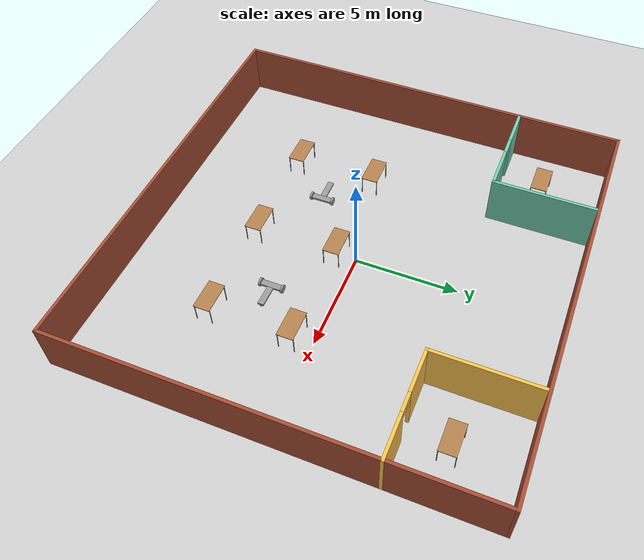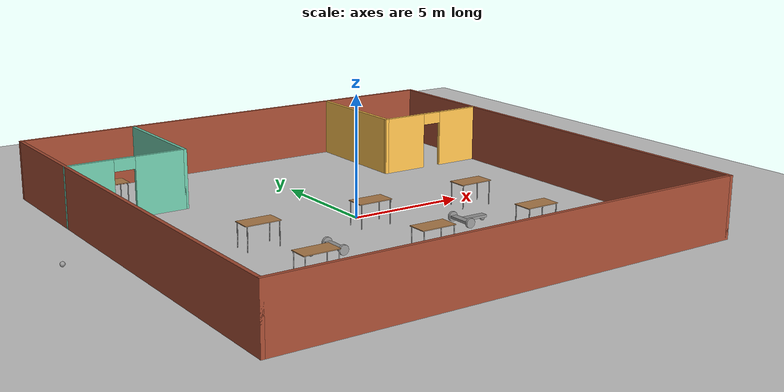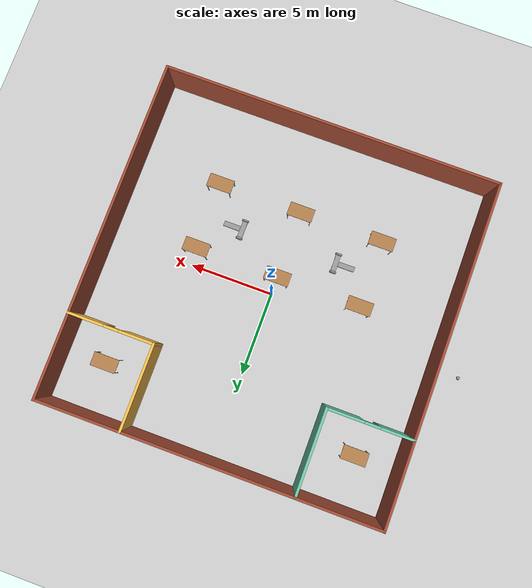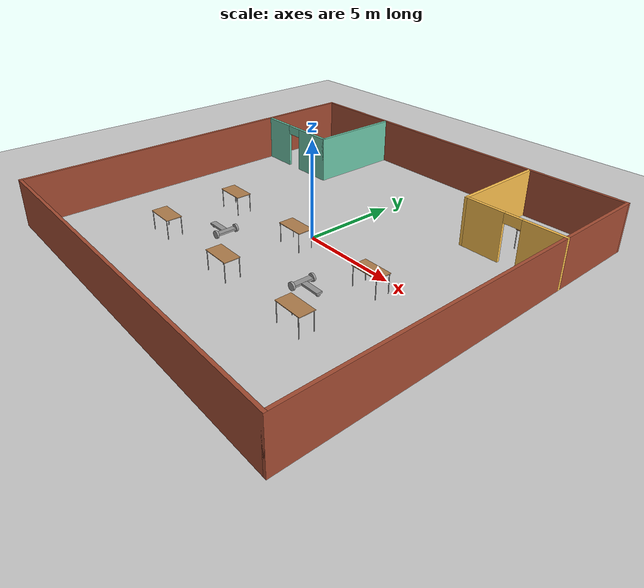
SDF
<sdf version="1.6">
 <world name="default">
  <light name="sun" type="directional">
   <pose>0 0 10 0 -0 0</pose>
   <diffuse>0.8 0.8 0.8 1</diffuse>
   <specular>0.2 0.2 0.2 1</specular>
   <attenuation>
    <range>1000</range>
    <constant>0.9</constant>
    <linear>0.01</linear>
    <quadratic>0.001</quadratic>
   </attenuation>
   <direction>-0.5 0.1 -0.9</direction>
  </light>
  <model name="ground_plane">
   <static>1</static>
   <link name="link">
    <collision name="collision">
     <geometry><plane><normal>0 0 1</normal><size>100 100</size></plane></geometry>
     <surface><friction><ode><mu>100</mu><mu2>50</mu2></ode></friction></surface>
    </collision>
    <visual name="visual">
     <cast_shadows>0</cast_shadows>
     <geometry><plane><normal>0 0 1</normal><size>100 100</size></plane></geometry>
     <material>
      <script><uri>file://media/materials/scripts/gazebo.material</uri><name>Gazebo/Grey</name></script>
     </material>
    </visual>
   </link>
  </model>
  <gravity>0 0 -9.8</gravity>
  <magnetic_field>6e-06 2.3e-05 -4.2e-05</magnetic_field>
  <atmosphere type="adiabatic"/>
  <physics name="default_physics" default="0" type="ode">
   <max_step_size>0.001</max_step_size>
   <real_time_factor>1</real_time_factor>
   <real_time_update_rate>1000</real_time_update_rate>
  </physics>
  <scene><ambient>0.4 0.4 0.4 1</ambient><background>0.7 0.7 0.7 1</background><shadows>1</shadows></scene>
  <spherical_coordinates>
   <surface_model>EARTH_WGS84</surface_model>
   <latitude_deg>0</latitude_deg>
   <longitude_deg>0</longitude_deg>
   <elevation>0</elevation>
   <heading_deg>0</heading_deg>
  </spherical_coordinates>
  <model name="Building">
   <link name="Wall_10">
    <collision name="Wall_10_Collision">
     <geometry><box><size>20.15 0.15 2.5</size></box></geometry>
     <pose>0 0 1.25 0 -0 0</pose>
    </collision>
    <visual name="Wall_10_Visual">
     <pose>0 0 1.25 0 -0 0</pose>
     <geometry><box><size>20.15 0.15 2.5</size></box></geometry>
     <material>
      <script><uri>file://media/materials/scripts/gazebo.material</uri><name>Gazebo/Bricks</name></script>
      <ambient>1 1 1 1</ambient>
     </material>
     <meta><layer>0</layer></meta>
    </visual>
    <pose>0 -10 0 0 -0 0</pose>
   </link>
   <link name="Wall_11">
    <collision name="Wall_11_Collision">
     <geometry><box><size>20.15 0.15 2.5</size></box></geometry>
     <pose>0 0 1.25 0 -0 0</pose>
    </collision>
    <visual name="Wall_11_Visual">
     <pose>0 0 1.25 0 -0 0</pose>
     <geometry><box><size>20.15 0.15 2.5</size></box></geometry>
     <material>
      <script><uri>file://media/materials/scripts/gazebo.material</uri><name>Gazebo/Bricks</name></script>
      <ambient>1 1 1 1</ambient>
     </material>
     <meta><layer>0</layer></meta>
    </visual>
    <pose>10 0 0 0 -0 1.5708</pose>
   </link>
   <link name="Wall_12">
    <collision name="Wall_12_Collision">
     <geometry><box><size>20.15 0.15 2.5</size></box></geometry>
     <pose>0 0 1.25 0 -0 0</pose>
    </collision>
    <visual name="Wall_12_Visual">
     <pose>0 0 1.25 0 -0 0</pose>
     <geometry><box><size>20.15 0.15 2.5</size></box></geometry>
     <material>
      <script><uri>file://media/materials/scripts/gazebo.material</uri><name>Gazebo/Bricks</name></script>
      <ambient>1 1 1 1</ambient>
     </material>
     <meta><layer>0</layer></meta>
    </visual>
    <pose>0 10 0 0 -0 3.14159</pose>
   </link>
   <link name="Wall_13">
    <collision name="Wall_13_Collision">
     <geometry><box><size>20.15 0.15 2.5</size></box></geometry>
     <pose>0 0 1.25 0 -0 0</pose>
    </collision>
    <visual name="Wall_13_Visual">
     <pose>0 0 1.25 0 -0 0</pose>
     <geometry><box><size>20.15 0.15 2.5</size></box></geometry>
     <material>
      <script><uri>file://media/materials/scripts/gazebo.material</uri><name>Gazebo/Bricks</name></script>
      <ambient>1 1 1 1</ambient>
     </material>
     <meta><layer>0</layer></meta>
    </visual>
    <pose>-10 0 0 0 -0 -1.5708</pose>
   </link>
   <link name="Wall_2">
    <pose>7.5 5 0 0 -0 3.14159</pose>
    <visual name="Wall_2_Visual_0">
     <pose>-1.5125 0 1.25 0 -0 0</pose>
     <geometry><box><size>2.125 0.15 2.5</size></box></geometry>
     <material>
      <script><uri>file://media/materials/scripts/gazebo.material</uri><name>Gazebo/Grey</name></script>
      <ambient>1 0.764706 0.305882 1</ambient>
     </material>
     <meta><layer>0</layer></meta>
    </visual>
    <collision name="Wall_2_Collision_0">
     <geometry><box><size>2.125 0.15 2.5</size></box></geometry>
     <pose>-1.5125 0 1.25 0 -0 0</pose>
    </collision>
    <visual name="Wall_2_Visual_1">
     <pose>1.5125 0 1.25 0 -0 0</pose>
     <geometry><box><size>2.125 0.15 2.5</size></box></geometry>
     <material>
      <script><uri>file://media/materials/scripts/gazebo.material</uri><name>Gazebo/Grey</name></script>
      <ambient>1 0.764706 0.305882 1</ambient>
     </material>
     <meta><layer>0</layer></meta>
    </visual>
    <collision name="Wall_2_Collision_1">
     <geometry><box><size>2.125 0.15 2.5</size></box></geometry>
     <pose>1.5125 0 1.25 0 -0 0</pose>
    </collision>
    <visual name="Wall_2_Visual_2">
     <pose>-0 0 2.25 0 -0 0</pose>
     <geometry><box><size>0.9 0.15 0.5</size></box></geometry>
     <material>
      <script><uri>file://media/materials/scripts/gazebo.material</uri><name>Gazebo/Grey</name></script>
      <ambient>1 0.764706 0.305882 1</ambient>
     </material>
     <meta><layer>0</layer></meta>
    </visual>
    <collision name="Wall_2_Collision_2">
     <geometry><box><size>0.9 0.15 0.5</size></box></geometry>
     <pose>-0 0 2.25 0 -0 0</pose>
    </collision>
   </link>
   <link name="Wall_3">
    <collision name="Wall_3_Collision">
     <geometry><box><size>5.15 0.15 2.5</size></box></geometry>
     <pose>0 0 1.25 0 -0 0</pose>
    </collision>
    <visual name="Wall_3_Visual">
     <pose>0 0 1.25 0 -0 0</pose>
     <geometry><box><size>5.15 0.15 2.5</size></box></geometry>
     <material>
      <script><uri>file://media/materials/scripts/gazebo.material</uri><name>Gazebo/Grey</name></script>
      <ambient>1 0.764706 0.305882 1</ambient>
     </material>
     <meta><layer>0</layer></meta>
    </visual>
    <pose>5 7.5 0 0 -0 1.5708</pose>
   </link>
   <link name="Wall_6">
    <pose>-7.5 5 0 0 -0 0</pose>
    <visual name="Wall_6_Visual_0">
     <pose>-1.57098 0 1.25 0 -0 0</pose>
     <geometry><box><size>2.00805 0.15 2.5</size></box></geometry>
     <material>
      <script><uri>file://media/materials/scripts/gazebo.material</uri><name>Gazebo/Grey</name></script>
      <ambient>0.435294 0.796078 0.67451 1</ambient>
     </material>
     <meta><layer>0</layer></meta>
    </visual>
    <collision name="Wall_6_Collision_0">
     <geometry><box><size>2.00805 0.15 2.5</size></box></geometry>
     <pose>-1.57098 0 1.25 0 -0 0</pose>
    </collision>
    <visual name="Wall_6_Visual_1">
     <pose>1.45402 0 1.25 0 -0 0</pose>
     <geometry><box><size>2.24195 0.15 2.5</size></box></geometry>
     <material>
      <script><uri>file://media/materials/scripts/gazebo.material</uri><name>Gazebo/Grey</name></script>
      <ambient>0.435294 0.796078 0.67451 1</ambient>
     </material>
     <meta><layer>0</layer></meta>
    </visual>
    <collision name="Wall_6_Collision_1">
     <geometry><box><size>2.24195 0.15 2.5</size></box></geometry>
     <pose>1.45402 0 1.25 0 -0 0</pose>
    </collision>
    <visual name="Wall_6_Visual_2">
     <pose>-0.116954 0 2.25 0 -0 0</pose>
     <geometry><box><size>0.9 0.15 0.5</size></box></geometry>
     <material>
      <script><uri>file://media/materials/scripts/gazebo.material</uri><name>Gazebo/Grey</name></script>
      <ambient>0.435294 0.796078 0.67451 1</ambient>
     </material>
     <meta><layer>0</layer></meta>
    </visual>
    <collision name="Wall_6_Collision_2">
     <geometry><box><size>0.9 0.15 0.5</size></box></geometry>
     <pose>-0.116954 0 2.25 0 -0 0</pose>
    </collision>
   </link>
   <link name="Wall_7">
    <collision name="Wall_7_Collision">
     <geometry><box><size>5.15 0.15 2.5</size></box></geometry>
     <pose>0 0 1.25 0 -0 0</pose>
    </collision>
    <visual name="Wall_7_Visual">
     <pose>0 0 1.25 0 -0 0</pose>
     <geometry><box><size>5.15 0.15 2.5</size></box></geometry>
     <material>
      <script><uri>file://media/materials/scripts/gazebo.material</uri><name>Gazebo/Grey</name></script>
      <ambient>0.435294 0.796078 0.67451 1</ambient>
     </material>
     <meta><layer>0</layer></meta>
    </visual>
    <pose>-5 7.5 0 0 -0 1.5708</pose>
   </link>
   <static>1</static>
  </model>
  <model name="table">
   <static>1</static>
   <link name="link">
    <collision name="surface">
     <pose>0 0 1 0 -0 0</pose>
     <geometry><box><size>1.5 0.8 0.03</size></box></geometry>
     <surface><friction><ode><mu>0.6</mu><mu2>0.6</mu2></ode></friction></surface>
    </collision>
    <visual name="visual1">
     <pose>0 0 1 0 -0 0</pose>
     <geometry><box><size>1.5 0.8 0.03</size></box></geometry>
     <material>
      <script><uri>file://media/materials/scripts/gazebo.material</uri><name>Gazebo/Wood</name></script>
     </material>
    </visual>
    <collision name="front_left_leg">
     <pose>0.68 0.38 0.5 0 -0 0</pose>
     <geometry><cylinder><radius>0.02</radius><length>1</length></cylinder></geometry>
    </collision>
    <visual name="front_left_leg">
     <pose>0.68 0.38 0.5 0 -0 0</pose>
     <geometry><cylinder><radius>0.02</radius><length>1</length></cylinder></geometry>
     <material>
      <script><uri>file://media/materials/scripts/gazebo.material</uri><name>Gazebo/Grey</name></script>
     </material>
    </visual>
    <collision name="front_right_leg">
     <pose>0.68 -0.38 0.5 0 -0 0</pose>
     <geometry><cylinder><radius>0.02</radius><length>1</length></cylinder></geometry>
    </collision>
    <visual name="front_right_leg">
     <pose>0.68 -0.38 0.5 0 -0 0</pose>
     <geometry><cylinder><radius>0.02</radius><length>1</length></cylinder></geometry>
     <material>
      <script><uri>file://media/materials/scripts/gazebo.material</uri><name>Gazebo/Grey</name></script>
     </material>
    </visual>
    <collision name="back_right_leg">
     <pose>-0.68 -0.38 0.5 0 -0 0</pose>
     <geometry><cylinder><radius>0.02</radius><length>1</length></cylinder></geometry>
    </collision>
    <visual name="back_right_leg">
     <pose>-0.68 -0.38 0.5 0 -0 0</pose>
     <geometry><cylinder><radius>0.02</radius><length>1</length></cylinder></geometry>
     <material>
      <script><uri>file://media/materials/scripts/gazebo.material</uri><name>Gazebo/Grey</name></script>
     </material>
    </visual>
    <collision name="back_left_leg">
     <pose>-0.68 0.38 0.5 0 -0 0</pose>
     <geometry><cylinder><radius>0.02</radius><length>1</length></cylinder></geometry>
    </collision>
    <visual name="back_left_leg">
     <pose>-0.68 0.38 0.5 0 -0 0</pose>
     <geometry><cylinder><radius>0.02</radius><length>1</length></cylinder></geometry>
     <material>
      <script><uri>file://media/materials/scripts/gazebo.material</uri><name>Gazebo/Grey</name></script>
     </material>
    </visual>
   </link>
   <pose>7.5 7 0 0 -0 0</pose>
  </model>
  <model name="table_0">
   <static>1</static>
   <link name="link">
    <collision name="surface">
     <pose>0 0 1 0 -0 0</pose>
     <geometry><box><size>1.5 0.8 0.03</size></box></geometry>
     <surface><friction><ode><mu>0.6</mu><mu2>0.6</mu2></ode></friction></surface>
    </collision>
    <visual name="visual1">
     <pose>0 0 1 0 -0 0</pose>
     <geometry><box><size>1.5 0.8 0.03</size></box></geometry>
     <material>
      <script><uri>file://media/materials/scripts/gazebo.material</uri><name>Gazebo/Wood</name></script>
     </material>
    </visual>
    <collision name="front_left_leg">
     <pose>0.68 0.38 0.5 0 -0 0</pose>
     <geometry><cylinder><radius>0.02</radius><length>1</length></cylinder></geometry>
    </collision>
    <visual name="front_left_leg">
     <pose>0.68 0.38 0.5 0 -0 0</pose>
     <geometry><cylinder><radius>0.02</radius><length>1</length></cylinder></geometry>
     <material>
      <script><uri>file://media/materials/scripts/gazebo.material</uri><name>Gazebo/Grey</name></script>
     </material>
    </visual>
    <collision name="front_right_leg">
     <pose>0.68 -0.38 0.5 0 -0 0</pose>
     <geometry><cylinder><radius>0.02</radius><length>1</length></cylinder></geometry>
    </collision>
    <visual name="front_right_leg">
     <pose>0.68 -0.38 0.5 0 -0 0</pose>
     <geometry><cylinder><radius>0.02</radius><length>1</length></cylinder></geometry>
     <material>
      <script><uri>file://media/materials/scripts/gazebo.material</uri><name>Gazebo/Grey</name></script>
     </material>
    </visual>
    <collision name="back_right_leg">
     <pose>-0.68 -0.38 0.5 0 -0 0</pose>
     <geometry><cylinder><radius>0.02</radius><length>1</length></cylinder></geometry>
    </collision>
    <visual name="back_right_leg">
     <pose>-0.68 -0.38 0.5 0 -0 0</pose>
     <geometry><cylinder><radius>0.02</radius><length>1</length></cylinder></geometry>
     <material>
      <script><uri>file://media/materials/scripts/gazebo.material</uri><name>Gazebo/Grey</name></script>
     </material>
    </visual>
    <collision name="back_left_leg">
     <pose>-0.68 0.38 0.5 0 -0 0</pose>
     <geometry><cylinder><radius>0.02</radius><length>1</length></cylinder></geometry>
    </collision>
    <visual name="back_left_leg">
     <pose>-0.68 0.38 0.5 0 -0 0</pose>
     <geometry><cylinder><radius>0.02</radius><length>1</length></cylinder></geometry>
     <material>
      <script><uri>file://media/materials/scripts/gazebo.material</uri><name>Gazebo/Grey</name></script>
     </material>
    </visual>
   </link>
   <pose>-7.5 7 0 0 -0 0</pose>
  </model>
  <model name="table_clone">
   <static>1</static>
   <link name="link">
    <collision name="surface">
     <pose>0 0 1 0 -0 0</pose>
     <geometry><box><size>1.5 0.8 0.03</size></box></geometry>
     <surface><friction><ode><mu>0.6</mu><mu2>0.6</mu2></ode></friction></surface>
    </collision>
    <visual name="visual1">
     <pose>0 0 1 0 -0 0</pose>
     <geometry><box><size>1.5 0.8 0.03</size></box></geometry>
     <material>
      <script><uri>file://media/materials/scripts/gazebo.material</uri><name>Gazebo/Wood</name></script>
     </material>
    </visual>
    <collision name="front_left_leg">
     <pose>0.68 0.38 0.5 0 -0 0</pose>
     <geometry><cylinder><radius>0.02</radius><length>1</length></cylinder></geometry>
    </collision>
    <visual name="front_left_leg">
     <pose>0.68 0.38 0.5 0 -0 0</pose>
     <geometry><cylinder><radius>0.02</radius><length>1</length></cylinder></geometry>
     <material>
      <script><uri>file://media/materials/scripts/gazebo.material</uri><name>Gazebo/Grey</name></script>
     </material>
    </visual>
    <collision name="front_right_leg">
     <pose>0.68 -0.38 0.5 0 -0 0</pose>
     <geometry><cylinder><radius>0.02</radius><length>1</length></cylinder></geometry>
    </collision>
    <visual name="front_right_leg">
     <pose>0.68 -0.38 0.5 0 -0 0</pose>
     <geometry><cylinder><radius>0.02</radius><length>1</length></cylinder></geometry>
     <material>
      <script><uri>file://media/materials/scripts/gazebo.material</uri><name>Gazebo/Grey</name></script>
     </material>
    </visual>
    <collision name="back_right_leg">
     <pose>-0.68 -0.38 0.5 0 -0 0</pose>
     <geometry><cylinder><radius>0.02</radius><length>1</length></cylinder></geometry>
    </collision>
    <visual name="back_right_leg">
     <pose>-0.68 -0.38 0.5 0 -0 0</pose>
     <geometry><cylinder><radius>0.02</radius><length>1</length></cylinder></geometry>
     <material>
      <script><uri>file://media/materials/scripts/gazebo.material</uri><name>Gazebo/Grey</name></script>
     </material>
    </visual>
    <collision name="back_left_leg">
     <pose>-0.68 0.38 0.5 0 -0 0</pose>
     <geometry><cylinder><radius>0.02</radius><length>1</length></cylinder></geometry>
    </collision>
    <visual name="back_left_leg">
     <pose>-0.68 0.38 0.5 0 -0 0</pose>
     <geometry><cylinder><radius>0.02</radius><length>1</length></cylinder></geometry>
     <material>
      <script><uri>file://media/materials/scripts/gazebo.material</uri><name>Gazebo/Grey</name></script>
     </material>
    </visual>
   </link>
   <pose>-5 -5 0 0 -0 0</pose>
  </model>
  <model name="table_clone_0">
   <static>1</static>
   <link name="link">
    <collision name="surface">
     <pose>0 0 1 0 -0 0</pose>
     <geometry><box><size>1.5 0.8 0.03</size></box></geometry>
     <surface><friction><ode><mu>0.6</mu><mu2>0.6</mu2></ode></friction></surface>
    </collision>
    <visual name="visual1">
     <pose>0 0 1 0 -0 0</pose>
     <geometry><box><size>1.5 0.8 0.03</size></box></geometry>
     <material>
      <script><uri>file://media/materials/scripts/gazebo.material</uri><name>Gazebo/Wood</name></script>
     </material>
    </visual>
    <collision name="front_left_leg">
     <pose>0.68 0.38 0.5 0 -0 0</pose>
     <geometry><cylinder><radius>0.02</radius><length>1</length></cylinder></geometry>
    </collision>
    <visual name="front_left_leg">
     <pose>0.68 0.38 0.5 0 -0 0</pose>
     <geometry><cylinder><radius>0.02</radius><length>1</length></cylinder></geometry>
     <material>
      <script><uri>file://media/materials/scripts/gazebo.material</uri><name>Gazebo/Grey</name></script>
     </material>
    </visual>
    <collision name="front_right_leg">
     <pose>0.68 -0.38 0.5 0 -0 0</pose>
     <geometry><cylinder><radius>0.02</radius><length>1</length></cylinder></geometry>
    </collision>
    <visual name="front_right_leg">
     <pose>0.68 -0.38 0.5 0 -0 0</pose>
     <geometry><cylinder><radius>0.02</radius><length>1</length></cylinder></geometry>
     <material>
      <script><uri>file://media/materials/scripts/gazebo.material</uri><name>Gazebo/Grey</name></script>
     </material>
    </visual>
    <collision name="back_right_leg">
     <pose>-0.68 -0.38 0.5 0 -0 0</pose>
     <geometry><cylinder><radius>0.02</radius><length>1</length></cylinder></geometry>
    </collision>
    <visual name="back_right_leg">
     <pose>-0.68 -0.38 0.5 0 -0 0</pose>
     <geometry><cylinder><radius>0.02</radius><length>1</length></cylinder></geometry>
     <material>
      <script><uri>file://media/materials/scripts/gazebo.material</uri><name>Gazebo/Grey</name></script>
     </material>
    </visual>
    <collision name="back_left_leg">
     <pose>-0.68 0.38 0.5 0 -0 0</pose>
     <geometry><cylinder><radius>0.02</radius><length>1</length></cylinder></geometry>
    </collision>
    <visual name="back_left_leg">
     <pose>-0.68 0.38 0.5 0 -0 0</pose>
     <geometry><cylinder><radius>0.02</radius><length>1</length></cylinder></geometry>
     <material>
      <script><uri>file://media/materials/scripts/gazebo.material</uri><name>Gazebo/Grey</name></script>
     </material>
    </visual>
   </link>
   <pose>0 -5 0 0 -0 0</pose>
  </model>
  <model name="table_clone_1">
   <static>1</static>
   <link name="link">
    <collision name="surface">
     <pose>0 0 1 0 -0 0</pose>
     <geometry><box><size>1.5 0.8 0.03</size></box></geometry>
     <surface><friction><ode><mu>0.6</mu><mu2>0.6</mu2></ode></friction></surface>
    </collision>
    <visual name="visual1">
     <pose>0 0 1 0 -0 0</pose>
     <geometry><box><size>1.5 0.8 0.03</size></box></geometry>
     <material>
      <script><uri>file://media/materials/scripts/gazebo.material</uri><name>Gazebo/Wood</name></script>
     </material>
    </visual>
    <collision name="front_left_leg">
     <pose>0.68 0.38 0.5 0 -0 0</pose>
     <geometry><cylinder><radius>0.02</radius><length>1</length></cylinder></geometry>
    </collision>
    <visual name="front_left_leg">
     <pose>0.68 0.38 0.5 0 -0 0</pose>
     <geometry><cylinder><radius>0.02</radius><length>1</length></cylinder></geometry>
     <material>
      <script><uri>file://media/materials/scripts/gazebo.material</uri><name>Gazebo/Grey</name></script>
     </material>
    </visual>
    <collision name="front_right_leg">
     <pose>0.68 -0.38 0.5 0 -0 0</pose>
     <geometry><cylinder><radius>0.02</radius><length>1</length></cylinder></geometry>
    </collision>
    <visual name="front_right_leg">
     <pose>0.68 -0.38 0.5 0 -0 0</pose>
     <geometry><cylinder><radius>0.02</radius><length>1</length></cylinder></geometry>
     <material>
      <script><uri>file://media/materials/scripts/gazebo.material</uri><name>Gazebo/Grey</name></script>
     </material>
    </visual>
    <collision name="back_right_leg">
     <pose>-0.68 -0.38 0.5 0 -0 0</pose>
     <geometry><cylinder><radius>0.02</radius><length>1</length></cylinder></geometry>
    </collision>
    <visual name="back_right_leg">
     <pose>-0.68 -0.38 0.5 0 -0 0</pose>
     <geometry><cylinder><radius>0.02</radius><length>1</length></cylinder></geometry>
     <material>
      <script><uri>file://media/materials/scripts/gazebo.material</uri><name>Gazebo/Grey</name></script>
     </material>
    </visual>
    <collision name="back_left_leg">
     <pose>-0.68 0.38 0.5 0 -0 0</pose>
     <geometry><cylinder><radius>0.02</radius><length>1</length></cylinder></geometry>
    </collision>
    <visual name="back_left_leg">
     <pose>-0.68 0.38 0.5 0 -0 0</pose>
     <geometry><cylinder><radius>0.02</radius><length>1</length></cylinder></geometry>
     <material>
      <script><uri>file://media/materials/scripts/gazebo.material</uri><name>Gazebo/Grey</name></script>
     </material>
    </visual>
   </link>
   <pose>5 -5 0 0 -0 0</pose>
  </model>
  <model name="table_clone_2">
   <static>1</static>
   <link name="link">
    <collision name="surface">
     <pose>0 0 1 0 -0 0</pose>
     <geometry><box><size>1.5 0.8 0.03</size></box></geometry>
     <surface><friction><ode><mu>0.6</mu><mu2>0.6</mu2></ode></friction></surface>
    </collision>
    <visual name="visual1">
     <pose>0 0 1 0 -0 0</pose>
     <geometry><box><size>1.5 0.8 0.03</size></box></geometry>
     <material>
      <script><uri>file://media/materials/scripts/gazebo.material</uri><name>Gazebo/Wood</name></script>
     </material>
    </visual>
    <collision name="front_left_leg">
     <pose>0.68 0.38 0.5 0 -0 0</pose>
     <geometry><cylinder><radius>0.02</radius><length>1</length></cylinder></geometry>
    </collision>
    <visual name="front_left_leg">
     <pose>0.68 0.38 0.5 0 -0 0</pose>
     <geometry><cylinder><radius>0.02</radius><length>1</length></cylinder></geometry>
     <material>
      <script><uri>file://media/materials/scripts/gazebo.material</uri><name>Gazebo/Grey</name></script>
     </material>
    </visual>
    <collision name="front_right_leg">
     <pose>0.68 -0.38 0.5 0 -0 0</pose>
     <geometry><cylinder><radius>0.02</radius><length>1</length></cylinder></geometry>
    </collision>
    <visual name="front_right_leg">
     <pose>0.68 -0.38 0.5 0 -0 0</pose>
     <geometry><cylinder><radius>0.02</radius><length>1</length></cylinder></geometry>
     <material>
      <script><uri>file://media/materials/scripts/gazebo.material</uri><name>Gazebo/Grey</name></script>
     </material>
    </visual>
    <collision name="back_right_leg">
     <pose>-0.68 -0.38 0.5 0 -0 0</pose>
     <geometry><cylinder><radius>0.02</radius><length>1</length></cylinder></geometry>
    </collision>
    <visual name="back_right_leg">
     <pose>-0.68 -0.38 0.5 0 -0 0</pose>
     <geometry><cylinder><radius>0.02</radius><length>1</length></cylinder></geometry>
     <material>
      <script><uri>file://media/materials/scripts/gazebo.material</uri><name>Gazebo/Grey</name></script>
     </material>
    </visual>
    <collision name="back_left_leg">
     <pose>-0.68 0.38 0.5 0 -0 0</pose>
     <geometry><cylinder><radius>0.02</radius><length>1</length></cylinder></geometry>
    </collision>
    <visual name="back_left_leg">
     <pose>-0.68 0.38 0.5 0 -0 0</pose>
     <geometry><cylinder><radius>0.02</radius><length>1</length></cylinder></geometry>
     <material>
      <script><uri>file://media/materials/scripts/gazebo.material</uri><name>Gazebo/Grey</name></script>
     </material>
    </visual>
   </link>
   <pose>0 -1 0 0 -0 0</pose>
  </model>
  <model name="table_clone_3">
   <static>1</static>
   <link name="link">
    <collision name="surface">
     <pose>0 0 1 0 -0 0</pose>
     <geometry><box><size>1.5 0.8 0.03</size></box></geometry>
     <surface><friction><ode><mu>0.6</mu><mu2>0.6</mu2></ode></friction></surface>
    </collision>
    <visual name="visual1">
     <pose>0 0 1 0 -0 0</pose>
     <geometry><box><size>1.5 0.8 0.03</size></box></geometry>
     <material>
      <script><uri>file://media/materials/scripts/gazebo.material</uri><name>Gazebo/Wood</name></script>
     </material>
    </visual>
    <collision name="front_left_leg">
     <pose>0.68 0.38 0.5 0 -0 0</pose>
     <geometry><cylinder><radius>0.02</radius><length>1</length></cylinder></geometry>
    </collision>
    <visual name="front_left_leg">
     <pose>0.68 0.38 0.5 0 -0 0</pose>
     <geometry><cylinder><radius>0.02</radius><length>1</length></cylinder></geometry>
     <material>
      <script><uri>file://media/materials/scripts/gazebo.material</uri><name>Gazebo/Grey</name></script>
     </material>
    </visual>
    <collision name="front_right_leg">
     <pose>0.68 -0.38 0.5 0 -0 0</pose>
     <geometry><cylinder><radius>0.02</radius><length>1</length></cylinder></geometry>
    </collision>
    <visual name="front_right_leg">
     <pose>0.68 -0.38 0.5 0 -0 0</pose>
     <geometry><cylinder><radius>0.02</radius><length>1</length></cylinder></geometry>
     <material>
      <script><uri>file://media/materials/scripts/gazebo.material</uri><name>Gazebo/Grey</name></script>
     </material>
    </visual>
    <collision name="back_right_leg">
     <pose>-0.68 -0.38 0.5 0 -0 0</pose>
     <geometry><cylinder><radius>0.02</radius><length>1</length></cylinder></geometry>
    </collision>
    <visual name="back_right_leg">
     <pose>-0.68 -0.38 0.5 0 -0 0</pose>
     <geometry><cylinder><radius>0.02</radius><length>1</length></cylinder></geometry>
     <material>
      <script><uri>file://media/materials/scripts/gazebo.material</uri><name>Gazebo/Grey</name></script>
     </material>
    </visual>
    <collision name="back_left_leg">
     <pose>-0.68 0.38 0.5 0 -0 0</pose>
     <geometry><cylinder><radius>0.02</radius><length>1</length></cylinder></geometry>
    </collision>
    <visual name="back_left_leg">
     <pose>-0.68 0.38 0.5 0 -0 0</pose>
     <geometry><cylinder><radius>0.02</radius><length>1</length></cylinder></geometry>
     <material>
      <script><uri>file://media/materials/scripts/gazebo.material</uri><name>Gazebo/Grey</name></script>
     </material>
    </visual>
   </link>
   <pose>-5 -1 0 0 -0 0</pose>
  </model>
  <model name="table_clone_4">
   <static>1</static>
   <link name="link">
    <collision name="surface">
     <pose>0 0 1 0 -0 0</pose>
     <geometry><box><size>1.5 0.8 0.03</size></box></geometry>
     <surface><friction><ode><mu>0.6</mu><mu2>0.6</mu2></ode></friction></surface>
    </collision>
    <visual name="visual1">
     <pose>0 0 1 0 -0 0</pose>
     <geometry><box><size>1.5 0.8 0.03</size></box></geometry>
     <material>
      <script><uri>file://media/materials/scripts/gazebo.material</uri><name>Gazebo/Wood</name></script>
     </material>
    </visual>
    <collision name="front_left_leg">
     <pose>0.68 0.38 0.5 0 -0 0</pose>
     <geometry><cylinder><radius>0.02</radius><length>1</length></cylinder></geometry>
    </collision>
    <visual name="front_left_leg">
     <pose>0.68 0.38 0.5 0 -0 0</pose>
     <geometry><cylinder><radius>0.02</radius><length>1</length></cylinder></geometry>
     <material>
      <script><uri>file://media/materials/scripts/gazebo.material</uri><name>Gazebo/Grey</name></script>
     </material>
    </visual>
    <collision name="front_right_leg">
     <pose>0.68 -0.38 0.5 0 -0 0</pose>
     <geometry><cylinder><radius>0.02</radius><length>1</length></cylinder></geometry>
    </collision>
    <visual name="front_right_leg">
     <pose>0.68 -0.38 0.5 0 -0 0</pose>
     <geometry><cylinder><radius>0.02</radius><length>1</length></cylinder></geometry>
     <material>
      <script><uri>file://media/materials/scripts/gazebo.material</uri><name>Gazebo/Grey</name></script>
     </material>
    </visual>
    <collision name="back_right_leg">
     <pose>-0.68 -0.38 0.5 0 -0 0</pose>
     <geometry><cylinder><radius>0.02</radius><length>1</length></cylinder></geometry>
    </collision>
    <visual name="back_right_leg">
     <pose>-0.68 -0.38 0.5 0 -0 0</pose>
     <geometry><cylinder><radius>0.02</radius><length>1</length></cylinder></geometry>
     <material>
      <script><uri>file://media/materials/scripts/gazebo.material</uri><name>Gazebo/Grey</name></script>
     </material>
    </visual>
    <collision name="back_left_leg">
     <pose>-0.68 0.38 0.5 0 -0 0</pose>
     <geometry><cylinder><radius>0.02</radius><length>1</length></cylinder></geometry>
    </collision>
    <visual name="back_left_leg">
     <pose>-0.68 0.38 0.5 0 -0 0</pose>
     <geometry><cylinder><radius>0.02</radius><length>1</length></cylinder></geometry>
     <material>
      <script><uri>file://media/materials/scripts/gazebo.material</uri><name>Gazebo/Grey</name></script>
     </material>
    </visual>
   </link>
   <pose>5 -1 0 0 -0 0</pose>
  </model>
  <model name="myRobot">
   <link name="link_0">
    <inertial>
     <mass>1</mass>
     <inertia>
      <ixx>0.166667</ixx>
      <ixy>0</ixy>
      <ixz>0</ixz>
      <iyy>0.166667</iyy>
      <iyz>0</iyz>
      <izz>0.166667</izz>
     </inertia>
     <pose>-0.01 0 0 0 -0 0</pose>
    </inertial>
    <pose>0.00249 0.000674 0.2 3.14159 0.001593 3.14159</pose>
    <visual name="visual">
     <geometry><box><size>0.3 1 0.1</size></box></geometry>
     <material>
      <lighting>1</lighting>
      <script><uri>file://media/materials/scripts/gazebo.material</uri><name>Gazebo/Grey</name></script>
      <shader type="pixel"><normal_map>__default__</normal_map></shader>
      <ambient>0.3 0.3 0.3 1</ambient>
      <diffuse>0.7 0.7 0.7 1</diffuse>
      <specular>0.01 0.01 0.01 1</specular>
      <emissive>0 0 0 1</emissive>
     </material>
    </visual>
    <collision name="collision">
     <geometry><box><size>0.3 1 0.1</size></box></geometry>
     <surface>
      <friction>
       <ode><mu>1</mu><mu2>1</mu2><fdir1>0 0 0</fdir1><slip1>0</slip1><slip2>0</slip2></ode>
       <torsional>
        <coefficient>1</coefficient>
        <patch_radius>0</patch_radius>
        <surface_radius>0</surface_radius>
        <use_patch_radius>1</use_patch_radius>
        <ode><slip>0</slip></ode>
       </torsional>
      </friction>
      <bounce><restitution_coefficient>0</restitution_coefficient><threshold>1e+06</threshold></bounce>
      <contact>
       <collide_without_contact>0</collide_without_contact>
       <collide_without_contact_bitmask>1</collide_without_contact_bitmask>
       <collide_bitmask>1</collide_bitmask>
       <ode>
        <soft_cfm>0</soft_cfm>
        <soft_erp>0.2</soft_erp>
        <kp>1e+13</kp>
        <kd>1</kd>
        <max_vel>0.01</max_vel>
        <min_depth>0</min_depth>
       </ode>
       <bullet>
        <split_impulse>1</split_impulse>
        <split_impulse_penetration_threshold>-0.01</split_impulse_penetration_threshold>
        <soft_cfm>0</soft_cfm>
        <soft_erp>0.2</soft_erp>
        <kp>1e+13</kp>
        <kd>1</kd>
       </bullet>
      </contact>
     </surface>
    </collision>
   </link>
   <link name="link_0_0">
    <inertial>
     <mass>1</mass>
     <inertia><ixx>0.1</ixx><ixy>0</ixy><ixz>0</ixz><iyy>0.1</iyy><iyz>0</iyz><izz>0.1</izz></inertia>
    </inertial>
    <pose>-1.04973 -1e-06 0.1 -3.14159 0.001372 3.14131</pose>
    <visual name="visual">
     <geometry><sphere><radius>0.1</radius></sphere></geometry>
     <material>
      <lighting>1</lighting>
      <script><uri>file://media/materials/scripts/gazebo.material</uri><name>Gazebo/Grey</name></script>
      <shader type="pixel"><normal_map>__default__</normal_map></shader>
      <ambient>0.3 0.3 0.3 1</ambient>
      <diffuse>0.7 0.7 0.7 1</diffuse>
      <specular>0.01 0.01 0.01 1</specular>
      <emissive>0 0 0 1</emissive>
     </material>
    </visual>
    <collision name="collision">
     <geometry><sphere><radius>0.1</radius></sphere></geometry>
     <surface>
      <friction>
       <ode><mu>1</mu><mu2>1</mu2><fdir1>0 0 0</fdir1><slip1>0</slip1><slip2>0</slip2></ode>
       <torsional>
        <coefficient>1</coefficient>
        <patch_radius>0</patch_radius>
        <surface_radius>0</surface_radius>
        <use_patch_radius>1</use_patch_radius>
        <ode><slip>0</slip></ode>
       </torsional>
      </friction>
      <bounce><restitution_coefficient>0</restitution_coefficient><threshold>1e+06</threshold></bounce>
      <contact>
       <collide_without_contact>0</collide_without_contact>
       <collide_without_contact_bitmask>1</collide_without_contact_bitmask>
       <collide_bitmask>1</collide_bitmask>
       <ode>
        <soft_cfm>0</soft_cfm>
        <soft_erp>0.2</soft_erp>
        <kp>1e+13</kp>
        <kd>1</kd>
        <max_vel>0.01</max_vel>
        <min_depth>0</min_depth>
       </ode>
       <bullet>
        <split_impulse>1</split_impulse>
        <split_impulse_penetration_threshold>-0.01</split_impulse_penetration_threshold>
        <soft_cfm>0</soft_cfm>
        <soft_erp>0.2</soft_erp>
        <kp>1e+13</kp>
        <kd>1</kd>
       </bullet>
      </contact>
     </surface>
    </collision>
   </link>
   <link name="link_0_clone_clone">
    <inertial>
     <mass>1</mass>
     <inertia>
      <ixx>0.166667</ixx>
      <ixy>0</ixy>
      <ixz>0</ixz>
      <iyy>0.166667</iyy>
      <iyz>0</iyz>
      <izz>0.166667</izz>
     </inertia>
     <pose>-0.01 0 0 0 -0 0</pose>
    </inertial>
    <pose>-0.650318 0.000187 0.19965 -3.14022 -0 1.5707</pose>
    <visual name="visual">
     <geometry><box><size>0.3 1 0.1</size></box></geometry>
     <material>
      <lighting>1</lighting>
      <script><uri>file://media/materials/scripts/gazebo.material</uri><name>Gazebo/Grey</name></script>
      <shader type="pixel"><normal_map>__default__</normal_map></shader>
      <ambient>0.3 0.3 0.3 1</ambient>
      <diffuse>0.7 0.7 0.7 1</diffuse>
      <specular>0.01 0.01 0.01 1</specular>
      <emissive>0 0 0 1</emissive>
     </material>
    </visual>
    <collision name="collision">
     <geometry><box><size>0.3 1 0.1</size></box></geometry>
     <surface>
      <friction>
       <ode><mu>1</mu><mu2>1</mu2><fdir1>0 0 0</fdir1><slip1>0</slip1><slip2>0</slip2></ode>
       <torsional>
        <coefficient>1</coefficient>
        <patch_radius>0</patch_radius>
        <surface_radius>0</surface_radius>
        <use_patch_radius>1</use_patch_radius>
        <ode><slip>0</slip></ode>
       </torsional>
      </friction>
      <bounce><restitution_coefficient>0</restitution_coefficient><threshold>1e+06</threshold></bounce>
      <contact>
       <collide_without_contact>0</collide_without_contact>
       <collide_without_contact_bitmask>1</collide_without_contact_bitmask>
       <collide_bitmask>1</collide_bitmask>
       <ode>
        <soft_cfm>0</soft_cfm>
        <soft_erp>0.2</soft_erp>
        <kp>1e+13</kp>
        <kd>1</kd>
        <max_vel>0.01</max_vel>
        <min_depth>0</min_depth>
       </ode>
       <bullet>
        <split_impulse>1</split_impulse>
        <split_impulse_penetration_threshold>-0.01</split_impulse_penetration_threshold>
        <soft_cfm>0</soft_cfm>
        <soft_erp>0.2</soft_erp>
        <kp>1e+13</kp>
        <kd>1</kd>
       </bullet>
      </contact>
     </surface>
    </collision>
   </link>
   <link name="link_2">
    <inertial>
     <mass>1</mass>
     <inertia><ixx>0.145833</ixx><ixy>0</ixy><ixz>0</ixz><iyy>0.145833</iyy><iyz>0</iyz><izz>0.125</izz></inertia>
    </inertial>
    <pose>0 -0.550019 0.2 1.5707 -0 0</pose>
    <visual name="visual">
     <geometry><cylinder><radius>0.2</radius><length>0.1</length></cylinder></geometry>
     <material>
      <lighting>1</lighting>
      <script><uri>file://media/materials/scripts/gazebo.material</uri><name>Gazebo/Grey</name></script>
      <shader type="pixel"><normal_map>__default__</normal_map></shader>
      <ambient>0.3 0.3 0.3 1</ambient>
      <diffuse>0.7 0.7 0.7 1</diffuse>
      <specular>0.01 0.01 0.01 1</specular>
      <emissive>0 0 0 1</emissive>
     </material>
    </visual>
    <collision name="collision">
     <geometry><cylinder><radius>0.2</radius><length>0.1</length></cylinder></geometry>
     <surface>
      <friction>
       <ode><mu>1</mu><mu2>1</mu2><fdir1>0 0 0</fdir1><slip1>0</slip1><slip2>0</slip2></ode>
       <torsional>
        <coefficient>1</coefficient>
        <patch_radius>0</patch_radius>
        <surface_radius>0</surface_radius>
        <use_patch_radius>1</use_patch_radius>
        <ode><slip>0</slip></ode>
       </torsional>
      </friction>
      <bounce><restitution_coefficient>0</restitution_coefficient><threshold>1e+06</threshold></bounce>
      <contact>
       <collide_without_contact>0</collide_without_contact>
       <collide_without_contact_bitmask>1</collide_without_contact_bitmask>
       <collide_bitmask>1</collide_bitmask>
       <ode>
        <soft_cfm>0</soft_cfm>
        <soft_erp>0.2</soft_erp>
        <kp>1e+13</kp>
        <kd>1</kd>
        <max_vel>0.01</max_vel>
        <min_depth>0</min_depth>
       </ode>
       <bullet>
        <split_impulse>1</split_impulse>
        <split_impulse_penetration_threshold>-0.01</split_impulse_penetration_threshold>
        <soft_cfm>0</soft_cfm>
        <soft_erp>0.2</soft_erp>
        <kp>1e+13</kp>
        <kd>1</kd>
       </bullet>
      </contact>
     </surface>
    </collision>
   </link>
   <link name="link_2_clone">
    <inertial>
     <mass>1</mass>
     <inertia><ixx>0.145833</ixx><ixy>0</ixy><ixz>0</ixz><iyy>0.145833</iyy><iyz>0</iyz><izz>0.125</izz></inertia>
    </inertial>
    <pose>0 0.550019 0.2 1.5707 -0 0</pose>
    <visual name="visual">
     <geometry><cylinder><radius>0.2</radius><length>0.1</length></cylinder></geometry>
     <material>
      <lighting>1</lighting>
      <script><uri>file://media/materials/scripts/gazebo.material</uri><name>Gazebo/Grey</name></script>
      <shader type="pixel"><normal_map>__default__</normal_map></shader>
      <ambient>0.3 0.3 0.3 1</ambient>
      <diffuse>0.7 0.7 0.7 1</diffuse>
      <specular>0.01 0.01 0.01 1</specular>
      <emissive>0 0 0 1</emissive>
     </material>
    </visual>
    <collision name="collision">
     <geometry><cylinder><radius>0.2</radius><length>0.1</length></cylinder></geometry>
     <surface>
      <friction>
       <ode><mu>1</mu><mu2>1</mu2><fdir1>0 0 0</fdir1><slip1>0</slip1><slip2>0</slip2></ode>
       <torsional>
        <coefficient>1</coefficient>
        <patch_radius>0</patch_radius>
        <surface_radius>0</surface_radius>
        <use_patch_radius>1</use_patch_radius>
        <ode><slip>0</slip></ode>
       </torsional>
      </friction>
      <bounce><restitution_coefficient>0</restitution_coefficient><threshold>1e+06</threshold></bounce>
      <contact>
       <collide_without_contact>0</collide_without_contact>
       <collide_without_contact_bitmask>1</collide_without_contact_bitmask>
       <collide_bitmask>1</collide_bitmask>
       <ode>
        <soft_cfm>0</soft_cfm>
        <soft_erp>0.2</soft_erp>
        <kp>1e+13</kp>
        <kd>1</kd>
        <max_vel>0.01</max_vel>
        <min_depth>0</min_depth>
       </ode>
       <bullet>
        <split_impulse>1</split_impulse>
        <split_impulse_penetration_threshold>-0.01</split_impulse_penetration_threshold>
        <soft_cfm>0</soft_cfm>
        <soft_erp>0.2</soft_erp>
        <kp>1e+13</kp>
        <kd>1</kd>
       </bullet>
      </contact>
     </surface>
    </collision>
   </link>
   <joint name="link_0_JOINT_2" type="revolute">
    <parent>link_0</parent>
    <child>link_2</child>
    <axis>
     <xyz>0 0 1</xyz>
     <use_parent_model_frame>0</use_parent_model_frame>
     <limit>
      <lower>-1.79769e+308</lower>
      <upper>1.79769e+308</upper>
      <effort>-1</effort>
      <velocity>-1</velocity>
     </limit>
     <dynamics>
      <spring_reference>0</spring_reference>
      <spring_stiffness>0</spring_stiffness>
      <damping>0</damping>
      <friction>0</friction>
     </dynamics>
    </axis>
    <physics>
     <ode><limit><cfm>0</cfm><erp>0.2</erp></limit><suspension><cfm>0</cfm><erp>0.2</erp></suspension></ode>
    </physics>
   </joint>
   <joint name="link_0_JOINT_3_0" type="fixed">
    <parent>link_0</parent>
    <child>link_0_clone_clone</child>
    <physics>
     <ode><limit><cfm>0</cfm><erp>0.2</erp></limit><suspension><cfm>0</cfm><erp>0.2</erp></suspension></ode>
    </physics>
   </joint>
   <joint name="link_0_JOINT_3" type="revolute">
    <parent>link_0</parent>
    <child>link_2_clone</child>
    <axis>
     <xyz>0 0 1</xyz>
     <use_parent_model_frame>0</use_parent_model_frame>
     <limit>
      <lower>-1.79769e+308</lower>
      <upper>1.79769e+308</upper>
      <effort>-1</effort>
      <velocity>-1</velocity>
     </limit>
     <dynamics>
      <spring_reference>0</spring_reference>
      <spring_stiffness>0</spring_stiffness>
      <damping>0</damping>
      <friction>0</friction>
     </dynamics>
    </axis>
    <physics>
     <ode><limit><cfm>0</cfm><erp>0.2</erp></limit><suspension><cfm>0</cfm><erp>0.2</erp></suspension></ode>
    </physics>
   </joint>
   <joint name="link_0_clone_clone_JOINT_7" type="fixed">
    <parent>link_0_clone_clone</parent>
    <child>link_0_0</child>
    <physics>
     <ode><limit><cfm>0</cfm><erp>0.2</erp></limit><suspension><cfm>0</cfm><erp>0.2</erp></suspension></ode>
    </physics>
   </joint>
   <static>0</static>
   <pose>-2.93733 -2.99952 5e-06 0 -5e-06 0.007148</pose>
  </model>
  <model name="myRobot_0">
   <link name="link_0">
    <inertial>
     <mass>1</mass>
     <inertia>
      <ixx>0.166667</ixx>
      <ixy>0</ixy>
      <ixz>0</ixz>
      <iyy>0.166667</iyy>
      <iyz>0</iyz>
      <izz>0.166667</izz>
     </inertia>
     <pose>-0.01 0 0 0 -0 0</pose>
    </inertial>
    <pose>0.00249 0.000674 0.2 3.14159 0.001593 3.14159</pose>
    <visual name="visual">
     <geometry><box><size>0.3 1 0.1</size></box></geometry>
     <material>
      <lighting>1</lighting>
      <script><uri>file://media/materials/scripts/gazebo.material</uri><name>Gazebo/Grey</name></script>
      <shader type="pixel"><normal_map>__default__</normal_map></shader>
      <ambient>0.3 0.3 0.3 1</ambient>
      <diffuse>0.7 0.7 0.7 1</diffuse>
      <specular>0.01 0.01 0.01 1</specular>
      <emissive>0 0 0 1</emissive>
     </material>
    </visual>
    <collision name="collision">
     <geometry><box><size>0.3 1 0.1</size></box></geometry>
     <surface>
      <friction>
       <ode><mu>1</mu><mu2>1</mu2><fdir1>0 0 0</fdir1><slip1>0</slip1><slip2>0</slip2></ode>
       <torsional>
        <coefficient>1</coefficient>
        <patch_radius>0</patch_radius>
        <surface_radius>0</surface_radius>
        <use_patch_radius>1</use_patch_radius>
        <ode><slip>0</slip></ode>
       </torsional>
      </friction>
      <bounce><restitution_coefficient>0</restitution_coefficient><threshold>1e+06</threshold></bounce>
      <contact>
       <collide_without_contact>0</collide_without_contact>
       <collide_without_contact_bitmask>1</collide_without_contact_bitmask>
       <collide_bitmask>1</collide_bitmask>
       <ode>
        <soft_cfm>0</soft_cfm>
        <soft_erp>0.2</soft_erp>
        <kp>1e+13</kp>
        <kd>1</kd>
        <max_vel>0.01</max_vel>
        <min_depth>0</min_depth>
       </ode>
       <bullet>
        <split_impulse>1</split_impulse>
        <split_impulse_penetration_threshold>-0.01</split_impulse_penetration_threshold>
        <soft_cfm>0</soft_cfm>
        <soft_erp>0.2</soft_erp>
        <kp>1e+13</kp>
        <kd>1</kd>
       </bullet>
      </contact>
     </surface>
    </collision>
   </link>
   <link name="link_0_0">
    <inertial>
     <mass>1</mass>
     <inertia><ixx>0.1</ixx><ixy>0</ixy><ixz>0</ixz><iyy>0.1</iyy><iyz>0</iyz><izz>0.1</izz></inertia>
    </inertial>
    <pose>-1.04973 -1e-06 0.1 -3.14159 0.001372 3.14131</pose>
    <visual name="visual">
     <geometry><sphere><radius>0.1</radius></sphere></geometry>
     <material>
      <lighting>1</lighting>
      <script><uri>file://media/materials/scripts/gazebo.material</uri><name>Gazebo/Grey</name></script>
      <shader type="pixel"><normal_map>__default__</normal_map></shader>
      <ambient>0.3 0.3 0.3 1</ambient>
      <diffuse>0.7 0.7 0.7 1</diffuse>
      <specular>0.01 0.01 0.01 1</specular>
      <emissive>0 0 0 1</emissive>
     </material>
    </visual>
    <collision name="collision">
     <geometry><sphere><radius>0.1</radius></sphere></geometry>
     <surface>
      <friction>
       <ode><mu>1</mu><mu2>1</mu2><fdir1>0 0 0</fdir1><slip1>0</slip1><slip2>0</slip2></ode>
       <torsional>
        <coefficient>1</coefficient>
        <patch_radius>0</patch_radius>
        <surface_radius>0</surface_radius>
        <use_patch_radius>1</use_patch_radius>
        <ode><slip>0</slip></ode>
       </torsional>
      </friction>
      <bounce><restitution_coefficient>0</restitution_coefficient><threshold>1e+06</threshold></bounce>
      <contact>
       <collide_without_contact>0</collide_without_contact>
       <collide_without_contact_bitmask>1</collide_without_contact_bitmask>
       <collide_bitmask>1</collide_bitmask>
       <ode>
        <soft_cfm>0</soft_cfm>
        <soft_erp>0.2</soft_erp>
        <kp>1e+13</kp>
        <kd>1</kd>
        <max_vel>0.01</max_vel>
        <min_depth>0</min_depth>
       </ode>
       <bullet>
        <split_impulse>1</split_impulse>
        <split_impulse_penetration_threshold>-0.01</split_impulse_penetration_threshold>
        <soft_cfm>0</soft_cfm>
        <soft_erp>0.2</soft_erp>
        <kp>1e+13</kp>
        <kd>1</kd>
       </bullet>
      </contact>
     </surface>
    </collision>
   </link>
   <link name="link_0_clone_clone">
    <inertial>
     <mass>1</mass>
     <inertia>
      <ixx>0.166667</ixx>
      <ixy>0</ixy>
      <ixz>0</ixz>
      <iyy>0.166667</iyy>
      <iyz>0</iyz>
      <izz>0.166667</izz>
     </inertia>
     <pose>-0.01 0 0 0 -0 0</pose>
    </inertial>
    <pose>-0.650318 0.000187 0.19965 -3.14022 -0 1.5707</pose>
    <visual name="visual">
     <geometry><box><size>0.3 1 0.1</size></box></geometry>
     <material>
      <lighting>1</lighting>
      <script><uri>file://media/materials/scripts/gazebo.material</uri><name>Gazebo/Grey</name></script>
      <shader type="pixel"><normal_map>__default__</normal_map></shader>
      <ambient>0.3 0.3 0.3 1</ambient>
      <diffuse>0.7 0.7 0.7 1</diffuse>
      <specular>0.01 0.01 0.01 1</specular>
      <emissive>0 0 0 1</emissive>
     </material>
    </visual>
    <collision name="collision">
     <geometry><box><size>0.3 1 0.1</size></box></geometry>
     <surface>
      <friction>
       <ode><mu>1</mu><mu2>1</mu2><fdir1>0 0 0</fdir1><slip1>0</slip1><slip2>0</slip2></ode>
       <torsional>
        <coefficient>1</coefficient>
        <patch_radius>0</patch_radius>
        <surface_radius>0</surface_radius>
        <use_patch_radius>1</use_patch_radius>
        <ode><slip>0</slip></ode>
       </torsional>
      </friction>
      <bounce><restitution_coefficient>0</restitution_coefficient><threshold>1e+06</threshold></bounce>
      <contact>
       <collide_without_contact>0</collide_without_contact>
       <collide_without_contact_bitmask>1</collide_without_contact_bitmask>
       <collide_bitmask>1</collide_bitmask>
       <ode>
        <soft_cfm>0</soft_cfm>
        <soft_erp>0.2</soft_erp>
        <kp>1e+13</kp>
        <kd>1</kd>
        <max_vel>0.01</max_vel>
        <min_depth>0</min_depth>
       </ode>
       <bullet>
        <split_impulse>1</split_impulse>
        <split_impulse_penetration_threshold>-0.01</split_impulse_penetration_threshold>
        <soft_cfm>0</soft_cfm>
        <soft_erp>0.2</soft_erp>
        <kp>1e+13</kp>
        <kd>1</kd>
       </bullet>
      </contact>
     </surface>
    </collision>
   </link>
   <link name="link_2">
    <inertial>
     <mass>1</mass>
     <inertia><ixx>0.145833</ixx><ixy>0</ixy><ixz>0</ixz><iyy>0.145833</iyy><iyz>0</iyz><izz>0.125</izz></inertia>
    </inertial>
    <pose>0 -0.550019 0.2 1.5707 -0 0</pose>
    <visual name="visual">
     <geometry><cylinder><radius>0.2</radius><length>0.1</length></cylinder></geometry>
     <material>
      <lighting>1</lighting>
      <script><uri>file://media/materials/scripts/gazebo.material</uri><name>Gazebo/Grey</name></script>
      <shader type="pixel"><normal_map>__default__</normal_map></shader>
      <ambient>0.3 0.3 0.3 1</ambient>
      <diffuse>0.7 0.7 0.7 1</diffuse>
      <specular>0.01 0.01 0.01 1</specular>
      <emissive>0 0 0 1</emissive>
     </material>
    </visual>
    <collision name="collision">
     <geometry><cylinder><radius>0.2</radius><length>0.1</length></cylinder></geometry>
     <surface>
      <friction>
       <ode><mu>1</mu><mu2>1</mu2><fdir1>0 0 0</fdir1><slip1>0</slip1><slip2>0</slip2></ode>
       <torsional>
        <coefficient>1</coefficient>
        <patch_radius>0</patch_radius>
        <surface_radius>0</surface_radius>
        <use_patch_radius>1</use_patch_radius>
        <ode><slip>0</slip></ode>
       </torsional>
      </friction>
      <bounce><restitution_coefficient>0</restitution_coefficient><threshold>1e+06</threshold></bounce>
      <contact>
       <collide_without_contact>0</collide_without_contact>
       <collide_without_contact_bitmask>1</collide_without_contact_bitmask>
       <collide_bitmask>1</collide_bitmask>
       <ode>
        <soft_cfm>0</soft_cfm>
        <soft_erp>0.2</soft_erp>
        <kp>1e+13</kp>
        <kd>1</kd>
        <max_vel>0.01</max_vel>
        <min_depth>0</min_depth>
       </ode>
       <bullet>
        <split_impulse>1</split_impulse>
        <split_impulse_penetration_threshold>-0.01</split_impulse_penetration_threshold>
        <soft_cfm>0</soft_cfm>
        <soft_erp>0.2</soft_erp>
        <kp>1e+13</kp>
        <kd>1</kd>
       </bullet>
      </contact>
     </surface>
    </collision>
   </link>
   <link name="link_2_clone">
    <inertial>
     <mass>1</mass>
     <inertia><ixx>0.145833</ixx><ixy>0</ixy><ixz>0</ixz><iyy>0.145833</iyy><iyz>0</iyz><izz>0.125</izz></inertia>
    </inertial>
    <pose>0 0.550019 0.2 1.5707 -0 0</pose>
    <visual name="visual">
     <geometry><cylinder><radius>0.2</radius><length>0.1</length></cylinder></geometry>
     <material>
      <lighting>1</lighting>
      <script><uri>file://media/materials/scripts/gazebo.material</uri><name>Gazebo/Grey</name></script>
      <shader type="pixel"><normal_map>__default__</normal_map></shader>
      <ambient>0.3 0.3 0.3 1</ambient>
      <diffuse>0.7 0.7 0.7 1</diffuse>
      <specular>0.01 0.01 0.01 1</specular>
      <emissive>0 0 0 1</emissive>
     </material>
    </visual>
    <collision name="collision">
     <geometry><cylinder><radius>0.2</radius><length>0.1</length></cylinder></geometry>
     <surface>
      <friction>
       <ode><mu>1</mu><mu2>1</mu2><fdir1>0 0 0</fdir1><slip1>0</slip1><slip2>0</slip2></ode>
       <torsional>
        <coefficient>1</coefficient>
        <patch_radius>0</patch_radius>
        <surface_radius>0</surface_radius>
        <use_patch_radius>1</use_patch_radius>
        <ode><slip>0</slip></ode>
       </torsional>
      </friction>
      <bounce><restitution_coefficient>0</restitution_coefficient><threshold>1e+06</threshold></bounce>
      <contact>
       <collide_without_contact>0</collide_without_contact>
       <collide_without_contact_bitmask>1</collide_without_contact_bitmask>
       <collide_bitmask>1</collide_bitmask>
       <ode>
        <soft_cfm>0</soft_cfm>
        <soft_erp>0.2</soft_erp>
        <kp>1e+13</kp>
        <kd>1</kd>
        <max_vel>0.01</max_vel>
        <min_depth>0</min_depth>
       </ode>
       <bullet>
        <split_impulse>1</split_impulse>
        <split_impulse_penetration_threshold>-0.01</split_impulse_penetration_threshold>
        <soft_cfm>0</soft_cfm>
        <soft_erp>0.2</soft_erp>
        <kp>1e+13</kp>
        <kd>1</kd>
       </bullet>
      </contact>
     </surface>
    </collision>
   </link>
   <joint name="link_0_JOINT_2" type="revolute">
    <parent>link_0</parent>
    <child>link_2</child>
    <axis>
     <xyz>0 0 1</xyz>
     <use_parent_model_frame>0</use_parent_model_frame>
     <limit>
      <lower>-1.79769e+308</lower>
      <upper>1.79769e+308</upper>
      <effort>-1</effort>
      <velocity>-1</velocity>
     </limit>
     <dynamics>
      <spring_reference>0</spring_reference>
      <spring_stiffness>0</spring_stiffness>
      <damping>0</damping>
      <friction>0</friction>
     </dynamics>
    </axis>
    <physics>
     <ode><limit><cfm>0</cfm><erp>0.2</erp></limit><suspension><cfm>0</cfm><erp>0.2</erp></suspension></ode>
    </physics>
   </joint>
   <joint name="link_0_JOINT_3_0" type="fixed">
    <parent>link_0</parent>
    <child>link_0_clone_clone</child>
    <physics>
     <ode><limit><cfm>0</cfm><erp>0.2</erp></limit><suspension><cfm>0</cfm><erp>0.2</erp></suspension></ode>
    </physics>
   </joint>
   <joint name="link_0_JOINT_3" type="revolute">
    <parent>link_0</parent>
    <child>link_2_clone</child>
    <axis>
     <xyz>0 0 1</xyz>
     <use_parent_model_frame>0</use_parent_model_frame>
     <limit>
      <lower>-1.79769e+308</lower>
      <upper>1.79769e+308</upper>
      <effort>-1</effort>
      <velocity>-1</velocity>
     </limit>
     <dynamics>
      <spring_reference>0</spring_reference>
      <spring_stiffness>0</spring_stiffness>
      <damping>0</damping>
      <friction>0</friction>
     </dynamics>
    </axis>
    <physics>
     <ode><limit><cfm>0</cfm><erp>0.2</erp></limit><suspension><cfm>0</cfm><erp>0.2</erp></suspension></ode>
    </physics>
   </joint>
   <joint name="link_0_clone_clone_JOINT_7" type="fixed">
    <parent>link_0_clone_clone</parent>
    <child>link_0_0</child>
    <physics>
     <ode><limit><cfm>0</cfm><erp>0.2</erp></limit><suspension><cfm>0</cfm><erp>0.2</erp></suspension></ode>
    </physics>
   </joint>
   <static>0</static>
   <pose>2.93806 -2.99965 5e-06 1e-06 -4e-06 3.13364</pose>
  </model>
  <model name="my_ball">
   <link name="link_0">
    <inertial>
     <mass>1</mass>
     <inertia><ixx>0.1</ixx><ixy>0</ixy><ixz>0</ixz><iyy>0.1</iyy><iyz>0</iyz><izz>0.1</izz></inertia>
    </inertial>
    <visual name="visual">
     <geometry><sphere><radius>0.1</radius></sphere></geometry>
     <material>
      <lighting>1</lighting>
      <script><uri>file://media/materials/scripts/gazebo.material</uri><name>Gazebo/Grey</name></script>
      <shader type="pixel"><normal_map>__default__</normal_map></shader>
      <ambient>1 1 1 1</ambient>
      <diffuse>1 1 1 1</diffuse>
      <specular>1 1 1 1</specular>
      <emissive>1 1 1 1</emissive>
     </material>
    </visual>
    <collision name="collision">
     <geometry><sphere><radius>0.1</radius></sphere></geometry>
     <surface>
      <friction>
       <ode><mu>1</mu><mu2>1</mu2><fdir1>0 0 0</fdir1><slip1>0</slip1><slip2>0</slip2></ode>
       <torsional>
        <coefficient>1</coefficient>
        <patch_radius>0</patch_radius>
        <surface_radius>0</surface_radius>
        <use_patch_radius>1</use_patch_radius>
        <ode><slip>0</slip></ode>
       </torsional>
      </friction>
      <bounce><restitution_coefficient>0</restitution_coefficient><threshold>1e+06</threshold></bounce>
      <contact>
       <collide_without_contact>0</collide_without_contact>
       <collide_without_contact_bitmask>1</collide_without_contact_bitmask>
       <collide_bitmask>1</collide_bitmask>
       <ode>
        <soft_cfm>0</soft_cfm>
        <soft_erp>0.2</soft_erp>
        <kp>1e+13</kp>
        <kd>1</kd>
        <max_vel>0.01</max_vel>
        <min_depth>0</min_depth>
       </ode>
       <bullet>
        <split_impulse>1</split_impulse>
        <split_impulse_penetration_threshold>-0.01</split_impulse_penetration_threshold>
        <soft_cfm>0</soft_cfm>
        <soft_erp>0.2</soft_erp>
        <kp>1e+13</kp>
        <kd>1</kd>
       </bullet>
      </contact>
     </surface>
    </collision>
   </link>
   <static>0</static>
   <pose>-11.8388 0.888507 0.1 0 -0 0</pose>
  </model>
 </world>
</sdf>
